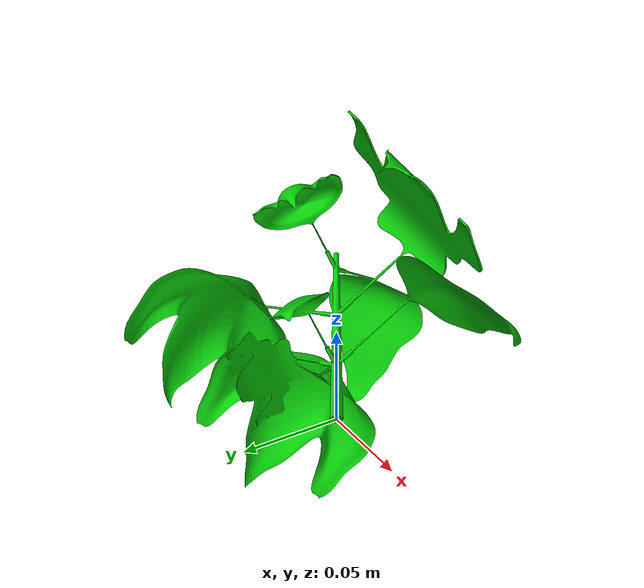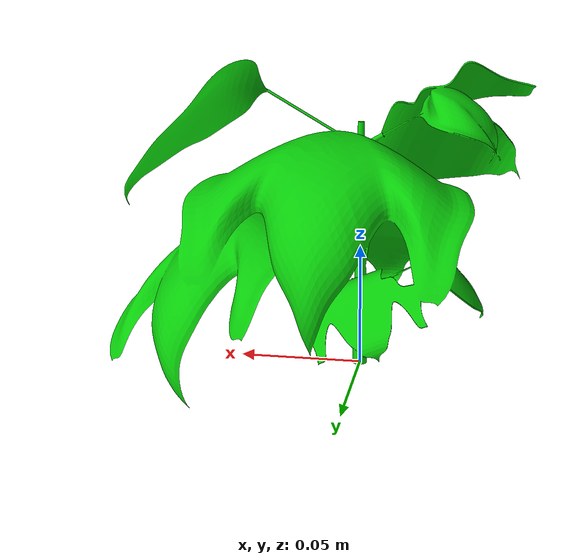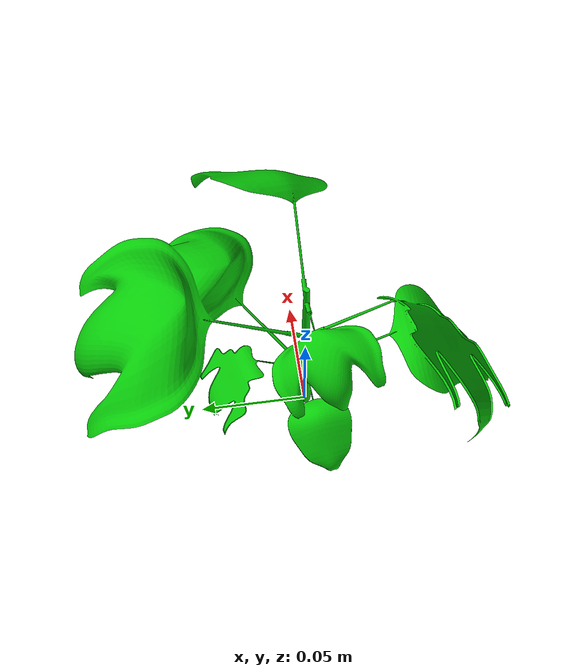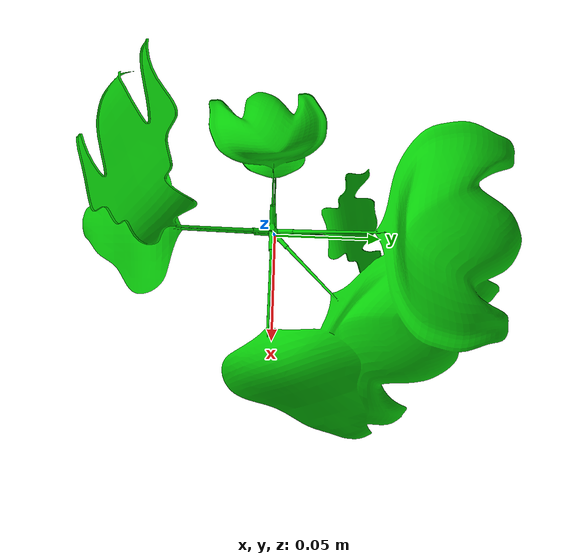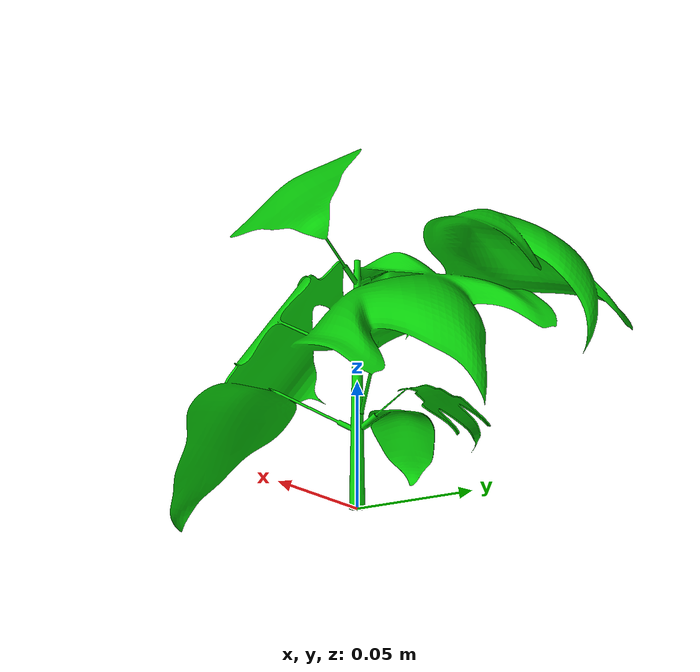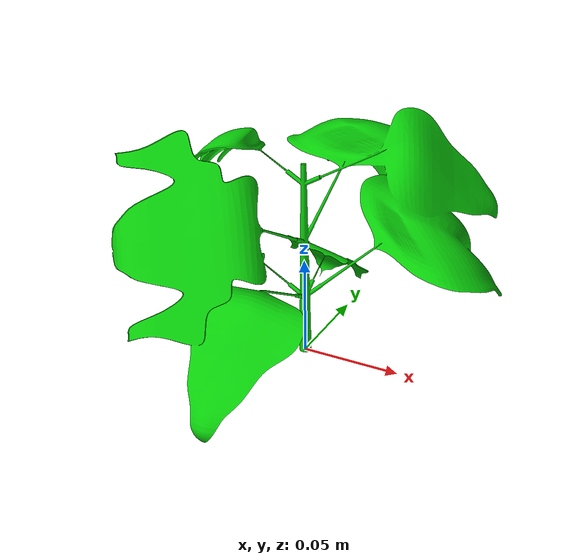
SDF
<?xml version="1.0" ?>
<sdf version='1.7'>
  <model name="plant">
      <static>true</static>
        <link name='link_1'>
            <pose>0 0 0 0 0 0</pose>
            <visual name='visual'>
                <pose>0 0 0 0 0 0</pose>
                <geometry>
                    <mesh>
                        <uri>model://plant/meshes/plant.dae</uri>
                        <scale>1 1 1</scale>
                    </mesh>
                </geometry>
            </visual>
            <collision name='collision'>
                <pose>0 0 0 0 0 0</pose>
                <geometry>
                    <mesh>
                        <uri>model://plant/meshes/plant.dae</uri>
                        <scale>1 1 1</scale>
                    </mesh>
                </geometry>
            </collision>
        </link>
  </model>
</sdf>
